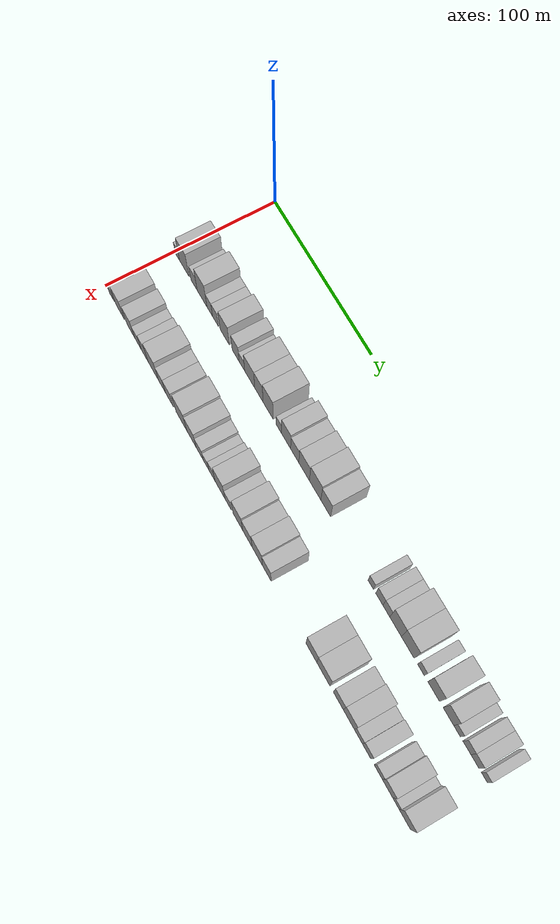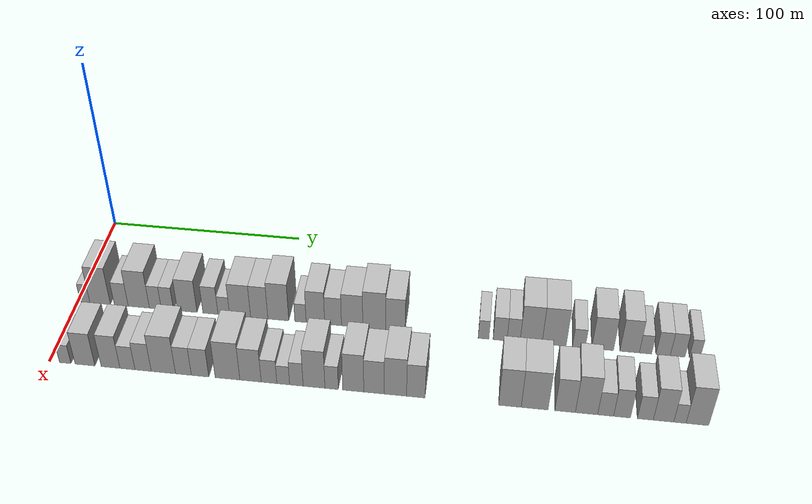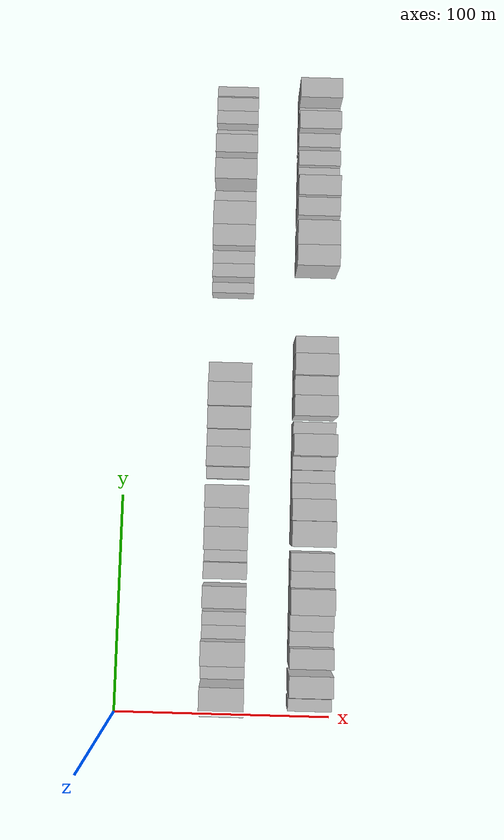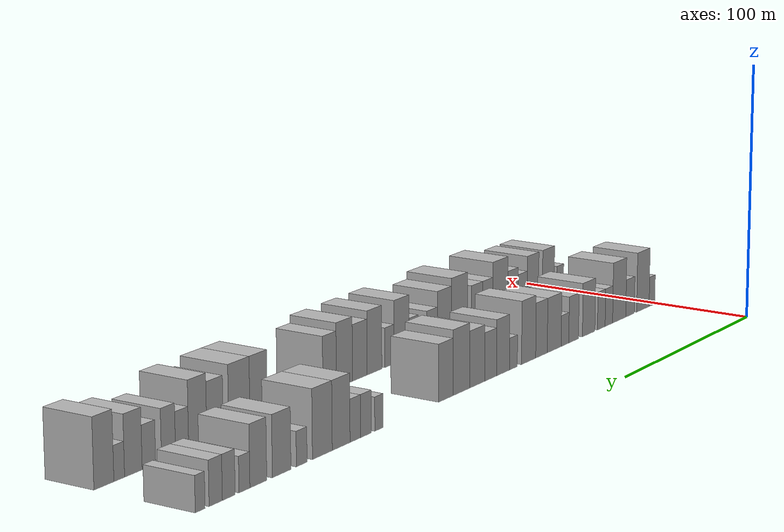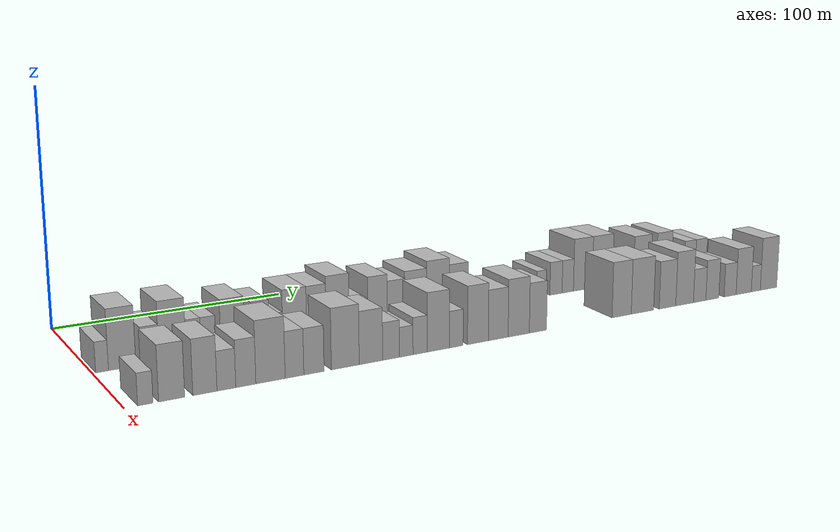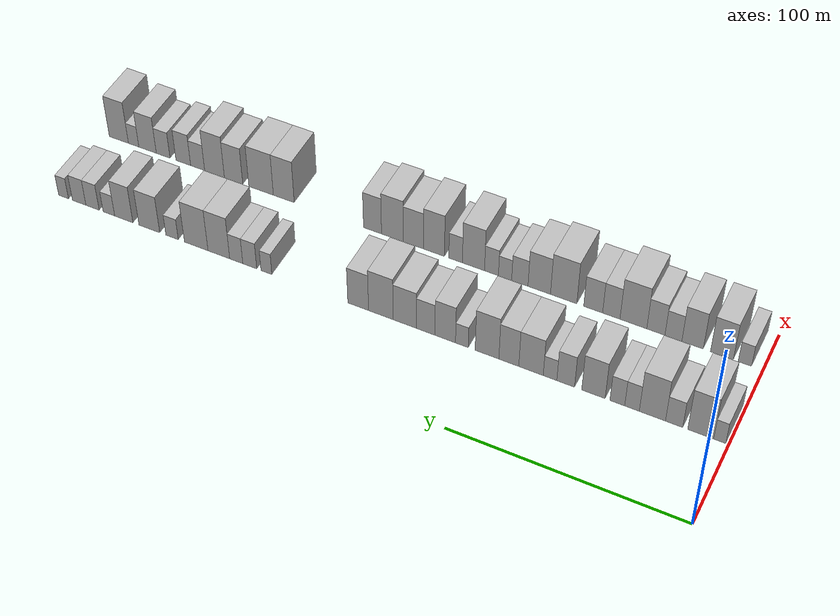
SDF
<sdf version="1.6">
 <world name="default">
  <model name="building_31">
   <static>1</static>
   <pose>50.0000 3.7047 0 0.000000 0.000000 0.000000</pose>
   <link name="link">
    <pose>0 0 6.00 0 0 0</pose>
    <collision name="collision"><geometry><box><size>20.0000 4.8413 12.0000</size></box></geometry></collision>
    <visual name="visual">
     <cast_shadows>0</cast_shadows>
     <geometry><box><size>20.0000 4.8413 12.0000</size></box></geometry>
     <material>
      <script>
       <uri>model://HANNAS_wall/materials/scripts</uri>
       <uri>model://HANNAS_wall/materials/textures</uri>
       <name>vrc/HANNAS_wall</name>
      </script>
     </material>
    </visual>
   </link>
  </model>
  <model name="building_32">
   <static>1</static>
   <pose>50.0000 11.3556 0 0.000000 0.000000 0.000000</pose>
   <link name="link">
    <pose>0 0 12.00 0 0 0</pose>
    <collision name="collision"><geometry><box><size>20.0000 10.4605 24.0000</size></box></geometry></collision>
    <visual name="visual">
     <cast_shadows>0</cast_shadows>
     <geometry><box><size>20.0000 10.4605 24.0000</size></box></geometry>
     <material>
      <script>
       <uri>model://HANNAS_wall/materials/scripts</uri>
       <uri>model://HANNAS_wall/materials/textures</uri>
       <name>vrc/HANNAS_wall</name>
      </script>
     </material>
    </visual>
   </link>
  </model>
  <model name="building_33">
   <static>1</static>
   <pose>50.0000 22.0970 0 0.000000 0.000000 0.000000</pose>
   <link name="link">
    <pose>0 0 7.50 0 0 0</pose>
    <collision name="collision"><geometry><box><size>20.0000 7.0223 15.0000</size></box></geometry></collision>
    <visual name="visual">
     <cast_shadows>0</cast_shadows>
     <geometry><box><size>20.0000 7.0223 15.0000</size></box></geometry>
     <material>
      <script>
       <uri>model://HANNAS_wall/materials/scripts</uri>
       <uri>model://HANNAS_wall/materials/textures</uri>
       <name>vrc/HANNAS_wall</name>
      </script>
     </material>
    </visual>
   </link>
  </model>
  <model name="building_34">
   <static>1</static>
   <pose>50.0000 30.9738 0 0.000000 0.000000 0.000000</pose>
   <link name="link">
    <pose>0 0 12.00 0 0 0</pose>
    <collision name="collision"><geometry><box><size>20.0000 10.7313 24.0000</size></box></geometry></collision>
    <visual name="visual">
     <cast_shadows>0</cast_shadows>
     <geometry><box><size>20.0000 10.7313 24.0000</size></box></geometry>
     <material>
      <script>
       <uri>model://HANNAS_wall/materials/scripts</uri>
       <uri>model://HANNAS_wall/materials/textures</uri>
       <name>vrc/HANNAS_wall</name>
      </script>
     </material>
    </visual>
   </link>
  </model>
  <model name="building_35">
   <static>1</static>
   <pose>50.0000 39.3434 0 0.000000 0.000000 0.000000</pose>
   <link name="link">
    <pose>0 0 7.50 0 0 0</pose>
    <collision name="collision"><geometry><box><size>20.0000 6.0079 15.0000</size></box></geometry></collision>
    <visual name="visual">
     <cast_shadows>0</cast_shadows>
     <geometry><box><size>20.0000 6.0079 15.0000</size></box></geometry>
     <material>
      <script>
       <uri>model://HANNAS_wall/materials/scripts</uri>
       <uri>model://HANNAS_wall/materials/textures</uri>
       <name>vrc/HANNAS_wall</name>
      </script>
     </material>
    </visual>
   </link>
  </model>
  <model name="building_36">
   <static>1</static>
   <pose>50.0000 45.4067 0 0.000000 0.000000 0.000000</pose>
   <link name="link">
    <pose>0 0 7.50 0 0 0</pose>
    <collision name="collision"><geometry><box><size>20.0000 6.1187 15.0000</size></box></geometry></collision>
    <visual name="visual">
     <cast_shadows>0</cast_shadows>
     <geometry><box><size>20.0000 6.1187 15.0000</size></box></geometry>
     <material>
      <script>
       <uri>model://HANNAS_wall/materials/scripts</uri>
       <uri>model://HANNAS_wall/materials/textures</uri>
       <name>vrc/HANNAS_wall</name>
      </script>
     </material>
    </visual>
   </link>
  </model>
  <model name="building_37">
   <static>1</static>
   <pose>50.0000 55.3528 0 0.000000 0.000000 0.000000</pose>
   <link name="link">
    <pose>0 0 10.50 0 0 0</pose>
    <collision name="collision"><geometry><box><size>20.0000 9.7734 21.0000</size></box></geometry></collision>
    <visual name="visual">
     <cast_shadows>0</cast_shadows>
     <geometry><box><size>20.0000 9.7734 21.0000</size></box></geometry>
     <material>
      <script>
       <uri>model://HANNAS_wall/materials/scripts</uri>
       <uri>model://HANNAS_wall/materials/textures</uri>
       <name>vrc/HANNAS_wall</name>
      </script>
     </material>
    </visual>
   </link>
  </model>
  <model name="building_38">
   <static>1</static>
   <pose>50.0000 66.9784 0 0.000000 0.000000 0.000000</pose>
   <link name="link">
    <pose>0 0 9.00 0 0 0</pose>
    <collision name="collision"><geometry><box><size>20.0000 7.4777 18.0000</size></box></geometry></collision>
    <visual name="visual">
     <cast_shadows>0</cast_shadows>
     <geometry><box><size>20.0000 7.4777 18.0000</size></box></geometry>
     <material>
      <script>
       <uri>model://HANNAS_wall/materials/scripts</uri>
       <uri>model://HANNAS_wall/materials/textures</uri>
       <name>vrc/HANNAS_wall</name>
      </script>
     </material>
    </visual>
   </link>
  </model>
  <model name="building_39">
   <static>1</static>
   <pose>50.0000 73.5964 0 0.000000 0.000000 0.000000</pose>
   <link name="link">
    <pose>0 0 6.00 0 0 0</pose>
    <collision name="collision"><geometry><box><size>20.0000 5.7583 12.0000</size></box></geometry></collision>
    <visual name="visual">
     <cast_shadows>0</cast_shadows>
     <geometry><box><size>20.0000 5.7583 12.0000</size></box></geometry>
     <material>
      <script>
       <uri>model://HANNAS_wall/materials/scripts</uri>
       <uri>model://HANNAS_wall/materials/textures</uri>
       <name>vrc/HANNAS_wall</name>
      </script>
     </material>
    </visual>
   </link>
  </model>
  <model name="building_40">
   <static>1</static>
   <pose>50.0000 81.6918 0 0.000000 0.000000 0.000000</pose>
   <link name="link">
    <pose>0 0 10.50 0 0 0</pose>
    <collision name="collision"><geometry><box><size>20.0000 10.4326 21.0000</size></box></geometry></collision>
    <visual name="visual">
     <cast_shadows>0</cast_shadows>
     <geometry><box><size>20.0000 10.4326 21.0000</size></box></geometry>
     <material>
      <script>
       <uri>model://HANNAS_wall/materials/scripts</uri>
       <uri>model://HANNAS_wall/materials/textures</uri>
       <name>vrc/HANNAS_wall</name>
      </script>
     </material>
    </visual>
   </link>
  </model>
  <model name="building_41">
   <static>1</static>
   <pose>50.0000 91.1878 0 0.000000 0.000000 0.000000</pose>
   <link name="link">
    <pose>0 0 10.50 0 0 0</pose>
    <collision name="collision"><geometry><box><size>20.0000 8.5594 21.0000</size></box></geometry></collision>
    <visual name="visual">
     <cast_shadows>0</cast_shadows>
     <geometry><box><size>20.0000 8.5594 21.0000</size></box></geometry>
     <material>
      <script>
       <uri>model://HANNAS_wall/materials/scripts</uri>
       <uri>model://HANNAS_wall/materials/textures</uri>
       <name>vrc/HANNAS_wall</name>
      </script>
     </material>
    </visual>
   </link>
  </model>
  <model name="building_42">
   <static>1</static>
   <pose>50.0000 100.6105 0 0.000000 0.000000 0.000000</pose>
   <link name="link">
    <pose>0 0 12.00 0 0 0</pose>
    <collision name="collision"><geometry><box><size>20.0000 10.2859 24.0000</size></box></geometry></collision>
    <visual name="visual">
     <cast_shadows>0</cast_shadows>
     <geometry><box><size>20.0000 10.2859 24.0000</size></box></geometry>
     <material>
      <script>
       <uri>model://HANNAS_wall/materials/scripts</uri>
       <uri>model://HANNAS_wall/materials/textures</uri>
       <name>vrc/HANNAS_wall</name>
      </script>
     </material>
    </visual>
   </link>
  </model>
  <model name="building_43">
   <static>1</static>
   <pose>50.0000 111.5396 0 0.000000 0.000000 0.000000</pose>
   <link name="link">
    <pose>0 0 6.00 0 0 0</pose>
    <collision name="collision"><geometry><box><size>20.0000 5.5724 12.0000</size></box></geometry></collision>
    <visual name="visual">
     <cast_shadows>0</cast_shadows>
     <geometry><box><size>20.0000 5.5724 12.0000</size></box></geometry>
     <material>
      <script>
       <uri>model://HANNAS_wall/materials/scripts</uri>
       <uri>model://HANNAS_wall/materials/textures</uri>
       <name>vrc/HANNAS_wall</name>
      </script>
     </material>
    </visual>
   </link>
  </model>
  <model name="building_44">
   <static>1</static>
   <pose>50.0000 118.8459 0 0.000000 0.000000 0.000000</pose>
   <link name="link">
    <pose>0 0 10.50 0 0 0</pose>
    <collision name="collision"><geometry><box><size>20.0000 9.0402 21.0000</size></box></geometry></collision>
    <visual name="visual">
     <cast_shadows>0</cast_shadows>
     <geometry><box><size>20.0000 9.0402 21.0000</size></box></geometry>
     <material>
      <script>
       <uri>model://HANNAS_wall/materials/scripts</uri>
       <uri>model://HANNAS_wall/materials/textures</uri>
       <name>vrc/HANNAS_wall</name>
      </script>
     </material>
    </visual>
   </link>
  </model>
  <model name="building_45">
   <static>1</static>
   <pose>50.0000 127.4547 0 0.000000 0.000000 0.000000</pose>
   <link name="link">
    <pose>0 0 9.00 0 0 0</pose>
    <collision name="collision"><geometry><box><size>20.0000 8.1775 18.0000</size></box></geometry></collision>
    <visual name="visual">
     <cast_shadows>0</cast_shadows>
     <geometry><box><size>20.0000 8.1775 18.0000</size></box></geometry>
     <material>
      <script>
       <uri>model://HANNAS_wall/materials/scripts</uri>
       <uri>model://HANNAS_wall/materials/textures</uri>
       <name>vrc/HANNAS_wall</name>
      </script>
     </material>
    </visual>
   </link>
  </model>
  <model name="building_46">
   <static>1</static>
   <pose>50.0000 136.7219 0 0.000000 0.000000 0.000000</pose>
   <link name="link">
    <pose>0 0 10.50 0 0 0</pose>
    <collision name="collision"><geometry><box><size>20.0000 10.3569 21.0000</size></box></geometry></collision>
    <visual name="visual">
     <cast_shadows>0</cast_shadows>
     <geometry><box><size>20.0000 10.3569 21.0000</size></box></geometry>
     <material>
      <script>
       <uri>model://HANNAS_wall/materials/scripts</uri>
       <uri>model://HANNAS_wall/materials/textures</uri>
       <name>vrc/HANNAS_wall</name>
      </script>
     </material>
    </visual>
   </link>
  </model>
  <model name="building_47">
   <static>1</static>
   <pose>50.0000 147.4399 0 0.000000 0.000000 0.000000</pose>
   <link name="link">
    <pose>0 0 12.00 0 0 0</pose>
    <collision name="collision"><geometry><box><size>20.0000 11.0789 24.0000</size></box></geometry></collision>
    <visual name="visual">
     <cast_shadows>0</cast_shadows>
     <geometry><box><size>20.0000 11.0789 24.0000</size></box></geometry>
     <material>
      <script>
       <uri>model://HANNAS_wall/materials/scripts</uri>
       <uri>model://HANNAS_wall/materials/textures</uri>
       <name>vrc/HANNAS_wall</name>
      </script>
     </material>
    </visual>
   </link>
  </model>
  <model name="building_48">
   <static>1</static>
   <pose>50.0000 157.6778 0 0.000000 0.000000 0.000000</pose>
   <link name="link">
    <pose>0 0 10.50 0 0 0</pose>
    <collision name="collision"><geometry><box><size>20.0000 9.3970 21.0000</size></box></geometry></collision>
    <visual name="visual">
     <cast_shadows>0</cast_shadows>
     <geometry><box><size>20.0000 9.3970 21.0000</size></box></geometry>
     <material>
      <script>
       <uri>model://HANNAS_wall/materials/scripts</uri>
       <uri>model://HANNAS_wall/materials/textures</uri>
       <name>vrc/HANNAS_wall</name>
      </script>
     </material>
    </visual>
   </link>
  </model>
  <model name="building_49">
   <static>1</static>
   <pose>50.0000 199.9840 0 0.000000 0.000000 0.000000</pose>
   <link name="link">
    <pose>0 0 6.00 0 0 0</pose>
    <collision name="collision"><geometry><box><size>20.0000 5.0718 12.0000</size></box></geometry></collision>
    <visual name="visual">
     <cast_shadows>0</cast_shadows>
     <geometry><box><size>20.0000 5.0718 12.0000</size></box></geometry>
     <material>
      <script>
       <uri>model://HANNAS_wall/materials/scripts</uri>
       <uri>model://HANNAS_wall/materials/textures</uri>
       <name>vrc/HANNAS_wall</name>
      </script>
     </material>
    </visual>
   </link>
  </model>
  <model name="building_50">
   <static>1</static>
   <pose>50.0000 207.8070 0 0.000000 0.000000 0.000000</pose>
   <link name="link">
    <pose>0 0 7.50 0 0 0</pose>
    <collision name="collision"><geometry><box><size>20.0000 6.5744 15.0000</size></box></geometry></collision>
    <visual name="visual">
     <cast_shadows>0</cast_shadows>
     <geometry><box><size>20.0000 6.5744 15.0000</size></box></geometry>
     <material>
      <script>
       <uri>model://HANNAS_wall/materials/scripts</uri>
       <uri>model://HANNAS_wall/materials/textures</uri>
       <name>vrc/HANNAS_wall</name>
      </script>
     </material>
    </visual>
   </link>
  </model>
  <model name="building_51">
   <static>1</static>
   <pose>50.0000 214.1928 0 0.000000 0.000000 0.000000</pose>
   <link name="link">
    <pose>0 0 7.50 0 0 0</pose>
    <collision name="collision"><geometry><box><size>20.0000 6.1971 15.0000</size></box></geometry></collision>
    <visual name="visual">
     <cast_shadows>0</cast_shadows>
     <geometry><box><size>20.0000 6.1971 15.0000</size></box></geometry>
     <material>
      <script>
       <uri>model://HANNAS_wall/materials/scripts</uri>
       <uri>model://HANNAS_wall/materials/textures</uri>
       <name>vrc/HANNAS_wall</name>
      </script>
     </material>
    </visual>
   </link>
  </model>
  <model name="building_52">
   <static>1</static>
   <pose>50.0000 222.4726 0 0.000000 0.000000 0.000000</pose>
   <link name="link">
    <pose>0 0 12.00 0 0 0</pose>
    <collision name="collision"><geometry><box><size>20.0000 10.3624 24.0000</size></box></geometry></collision>
    <visual name="visual">
     <cast_shadows>0</cast_shadows>
     <geometry><box><size>20.0000 10.3624 24.0000</size></box></geometry>
     <material>
      <script>
       <uri>model://HANNAS_wall/materials/scripts</uri>
       <uri>model://HANNAS_wall/materials/textures</uri>
       <name>vrc/HANNAS_wall</name>
      </script>
     </material>
    </visual>
   </link>
  </model>
  <model name="building_53">
   <static>1</static>
   <pose>50.0000 233.3145 0 0.000000 0.000000 0.000000</pose>
   <link name="link">
    <pose>0 0 12.00 0 0 0</pose>
    <collision name="collision"><geometry><box><size>20.0000 11.3215 24.0000</size></box></geometry></collision>
    <visual name="visual">
     <cast_shadows>0</cast_shadows>
     <geometry><box><size>20.0000 11.3215 24.0000</size></box></geometry>
     <material>
      <script>
       <uri>model://HANNAS_wall/materials/scripts</uri>
       <uri>model://HANNAS_wall/materials/textures</uri>
       <name>vrc/HANNAS_wall</name>
      </script>
     </material>
    </visual>
   </link>
  </model>
  <model name="building_54">
   <static>1</static>
   <pose>50.0000 244.9647 0 0.000000 0.000000 0.000000</pose>
   <link name="link">
    <pose>0 0 6.00 0 0 0</pose>
    <collision name="collision"><geometry><box><size>20.0000 5.9788 12.0000</size></box></geometry></collision>
    <visual name="visual">
     <cast_shadows>0</cast_shadows>
     <geometry><box><size>20.0000 5.9788 12.0000</size></box></geometry>
     <material>
      <script>
       <uri>model://HANNAS_wall/materials/scripts</uri>
       <uri>model://HANNAS_wall/materials/textures</uri>
       <name>vrc/HANNAS_wall</name>
      </script>
     </material>
    </visual>
   </link>
  </model>
  <model name="building_55">
   <static>1</static>
   <pose>50.0000 256.0269 0 0.000000 0.000000 0.000000</pose>
   <link name="link">
    <pose>0 0 10.50 0 0 0</pose>
    <collision name="collision"><geometry><box><size>20.0000 10.1456 21.0000</size></box></geometry></collision>
    <visual name="visual">
     <cast_shadows>0</cast_shadows>
     <geometry><box><size>20.0000 10.1456 21.0000</size></box></geometry>
     <material>
      <script>
       <uri>model://HANNAS_wall/materials/scripts</uri>
       <uri>model://HANNAS_wall/materials/textures</uri>
       <name>vrc/HANNAS_wall</name>
      </script>
     </material>
    </visual>
   </link>
  </model>
  <model name="building_56">
   <static>1</static>
   <pose>50.0000 268.5991 0 0.000000 0.000000 0.000000</pose>
   <link name="link">
    <pose>0 0 10.50 0 0 0</pose>
    <collision name="collision"><geometry><box><size>20.0000 8.9989 21.0000</size></box></geometry></collision>
    <visual name="visual">
     <cast_shadows>0</cast_shadows>
     <geometry><box><size>20.0000 8.9989 21.0000</size></box></geometry>
     <material>
      <script>
       <uri>model://HANNAS_wall/materials/scripts</uri>
       <uri>model://HANNAS_wall/materials/textures</uri>
       <name>vrc/HANNAS_wall</name>
      </script>
     </material>
    </visual>
   </link>
  </model>
  <model name="building_57">
   <static>1</static>
   <pose>50.0000 275.9537 0 0.000000 0.000000 0.000000</pose>
   <link name="link">
    <pose>0 0 6.00 0 0 0</pose>
    <collision name="collision"><geometry><box><size>20.0000 5.7102 12.0000</size></box></geometry></collision>
    <visual name="visual">
     <cast_shadows>0</cast_shadows>
     <geometry><box><size>20.0000 5.7102 12.0000</size></box></geometry>
     <material>
      <script>
       <uri>model://HANNAS_wall/materials/scripts</uri>
       <uri>model://HANNAS_wall/materials/textures</uri>
       <name>vrc/HANNAS_wall</name>
      </script>
     </material>
    </visual>
   </link>
  </model>
  <model name="building_58">
   <static>1</static>
   <pose>50.0000 284.1111 0 0.000000 0.000000 0.000000</pose>
   <link name="link">
    <pose>0 0 7.50 0 0 0</pose>
    <collision name="collision"><geometry><box><size>20.0000 6.6046 15.0000</size></box></geometry></collision>
    <visual name="visual">
     <cast_shadows>0</cast_shadows>
     <geometry><box><size>20.0000 6.6046 15.0000</size></box></geometry>
     <material>
      <script>
       <uri>model://HANNAS_wall/materials/scripts</uri>
       <uri>model://HANNAS_wall/materials/textures</uri>
       <name>vrc/HANNAS_wall</name>
      </script>
     </material>
    </visual>
   </link>
  </model>
  <model name="building_59">
   <static>1</static>
   <pose>50.0000 290.7950 0 0.000000 0.000000 0.000000</pose>
   <link name="link">
    <pose>0 0 7.50 0 0 0</pose>
    <collision name="collision"><geometry><box><size>20.0000 6.7632 15.0000</size></box></geometry></collision>
    <visual name="visual">
     <cast_shadows>0</cast_shadows>
     <geometry><box><size>20.0000 6.7632 15.0000</size></box></geometry>
     <material>
      <script>
       <uri>model://HANNAS_wall/materials/scripts</uri>
       <uri>model://HANNAS_wall/materials/textures</uri>
       <name>vrc/HANNAS_wall</name>
      </script>
     </material>
    </visual>
   </link>
  </model>
  <model name="building_60">
   <static>1</static>
   <pose>50.0000 298.6488 0 0.000000 0.000000 0.000000</pose>
   <link name="link">
    <pose>0 0 6.00 0 0 0</pose>
    <collision name="collision"><geometry><box><size>20.0000 4.9443 12.0000</size></box></geometry></collision>
    <visual name="visual">
     <cast_shadows>0</cast_shadows>
     <geometry><box><size>20.0000 4.9443 12.0000</size></box></geometry>
     <material>
      <script>
       <uri>model://HANNAS_wall/materials/scripts</uri>
       <uri>model://HANNAS_wall/materials/textures</uri>
       <name>vrc/HANNAS_wall</name>
      </script>
     </material>
    </visual>
   </link>
  </model>
  <model name="building_90">
   <static>1</static>
   <pose>90.0000 7.5762 0 0.000000 0.000000 0.000000</pose>
   <link name="link">
    <pose>0 0 6.00 0 0 0</pose>
    <collision name="collision"><geometry><box><size>20.0000 5.5436 12.0000</size></box></geometry></collision>
    <visual name="visual">
     <cast_shadows>0</cast_shadows>
     <geometry><box><size>20.0000 5.5436 12.0000</size></box></geometry>
     <material>
      <script>
       <uri>model://HANNAS_wall/materials/scripts</uri>
       <uri>model://HANNAS_wall/materials/textures</uri>
       <name>vrc/HANNAS_wall</name>
      </script>
     </material>
    </visual>
   </link>
  </model>
  <model name="building_91">
   <static>1</static>
   <pose>90.0000 17.1047 0 0.000000 0.000000 0.000000</pose>
   <link name="link">
    <pose>0 0 10.50 0 0 0</pose>
    <collision name="collision"><geometry><box><size>20.0000 9.5132 21.0000</size></box></geometry></collision>
    <visual name="visual">
     <cast_shadows>0</cast_shadows>
     <geometry><box><size>20.0000 9.5132 21.0000</size></box></geometry>
     <material>
      <script>
       <uri>model://HANNAS_wall/materials/scripts</uri>
       <uri>model://HANNAS_wall/materials/textures</uri>
       <name>vrc/HANNAS_wall</name>
      </script>
     </material>
    </visual>
   </link>
  </model>
  <model name="building_92">
   <static>1</static>
   <pose>90.0000 29.3681 0 0.000000 0.000000 0.000000</pose>
   <link name="link">
    <pose>0 0 10.50 0 0 0</pose>
    <collision name="collision"><geometry><box><size>20.0000 9.0137 21.0000</size></box></geometry></collision>
    <visual name="visual">
     <cast_shadows>0</cast_shadows>
     <geometry><box><size>20.0000 9.0137 21.0000</size></box></geometry>
     <material>
      <script>
       <uri>model://HANNAS_wall/materials/scripts</uri>
       <uri>model://HANNAS_wall/materials/textures</uri>
       <name>vrc/HANNAS_wall</name>
      </script>
     </material>
    </visual>
   </link>
  </model>
  <model name="building_93">
   <static>1</static>
   <pose>90.0000 37.4484 0 0.000000 0.000000 0.000000</pose>
   <link name="link">
    <pose>0 0 7.50 0 0 0</pose>
    <collision name="collision"><geometry><box><size>20.0000 7.1468 15.0000</size></box></geometry></collision>
    <visual name="visual">
     <cast_shadows>0</cast_shadows>
     <geometry><box><size>20.0000 7.1468 15.0000</size></box></geometry>
     <material>
      <script>
       <uri>model://HANNAS_wall/materials/scripts</uri>
       <uri>model://HANNAS_wall/materials/textures</uri>
       <name>vrc/HANNAS_wall</name>
      </script>
     </material>
    </visual>
   </link>
  </model>
  <model name="building_94">
   <static>1</static>
   <pose>90.0000 44.8865 0 0.000000 0.000000 0.000000</pose>
   <link name="link">
    <pose>0 0 9.00 0 0 0</pose>
    <collision name="collision"><geometry><box><size>20.0000 7.7296 18.0000</size></box></geometry></collision>
    <visual name="visual">
     <cast_shadows>0</cast_shadows>
     <geometry><box><size>20.0000 7.7296 18.0000</size></box></geometry>
     <material>
      <script>
       <uri>model://HANNAS_wall/materials/scripts</uri>
       <uri>model://HANNAS_wall/materials/textures</uri>
       <name>vrc/HANNAS_wall</name>
      </script>
     </material>
    </visual>
   </link>
  </model>
  <model name="building_95">
   <static>1</static>
   <pose>90.0000 54.5044 0 0.000000 0.000000 0.000000</pose>
   <link name="link">
    <pose>0 0 12.00 0 0 0</pose>
    <collision name="collision"><geometry><box><size>20.0000 11.5062 24.0000</size></box></geometry></collision>
    <visual name="visual">
     <cast_shadows>0</cast_shadows>
     <geometry><box><size>20.0000 11.5062 24.0000</size></box></geometry>
     <material>
      <script>
       <uri>model://HANNAS_wall/materials/scripts</uri>
       <uri>model://HANNAS_wall/materials/textures</uri>
       <name>vrc/HANNAS_wall</name>
      </script>
     </material>
    </visual>
   </link>
  </model>
  <model name="building_96">
   <static>1</static>
   <pose>90.0000 63.9967 0 0.000000 0.000000 0.000000</pose>
   <link name="link">
    <pose>0 0 9.00 0 0 0</pose>
    <collision name="collision"><geometry><box><size>20.0000 7.4783 18.0000</size></box></geometry></collision>
    <visual name="visual">
     <cast_shadows>0</cast_shadows>
     <geometry><box><size>20.0000 7.4783 18.0000</size></box></geometry>
     <material>
      <script>
       <uri>model://HANNAS_wall/materials/scripts</uri>
       <uri>model://HANNAS_wall/materials/textures</uri>
       <name>vrc/HANNAS_wall</name>
      </script>
     </material>
    </visual>
   </link>
  </model>
  <model name="building_97">
   <static>1</static>
   <pose>90.0000 71.8436 0 0.000000 0.000000 0.000000</pose>
   <link name="link">
    <pose>0 0 9.00 0 0 0</pose>
    <collision name="collision"><geometry><box><size>20.0000 8.2156 18.0000</size></box></geometry></collision>
    <visual name="visual">
     <cast_shadows>0</cast_shadows>
     <geometry><box><size>20.0000 8.2156 18.0000</size></box></geometry>
     <material>
      <script>
       <uri>model://HANNAS_wall/materials/scripts</uri>
       <uri>model://HANNAS_wall/materials/textures</uri>
       <name>vrc/HANNAS_wall</name>
      </script>
     </material>
    </visual>
   </link>
  </model>
  <model name="building_98">
   <static>1</static>
   <pose>90.0000 84.7358 0 0.000000 0.000000 0.000000</pose>
   <link name="link">
    <pose>0 0 12.00 0 0 0</pose>
    <collision name="collision"><geometry><box><size>20.0000 11.5688 24.0000</size></box></geometry></collision>
    <visual name="visual">
     <cast_shadows>0</cast_shadows>
     <geometry><box><size>20.0000 11.5688 24.0000</size></box></geometry>
     <material>
      <script>
       <uri>model://HANNAS_wall/materials/scripts</uri>
       <uri>model://HANNAS_wall/materials/textures</uri>
       <name>vrc/HANNAS_wall</name>
      </script>
     </material>
    </visual>
   </link>
  </model>
  <model name="building_99">
   <static>1</static>
   <pose>90.0000 95.5029 0 0.000000 0.000000 0.000000</pose>
   <link name="link">
    <pose>0 0 10.50 0 0 0</pose>
    <collision name="collision"><geometry><box><size>20.0000 9.9653 21.0000</size></box></geometry></collision>
    <visual name="visual">
     <cast_shadows>0</cast_shadows>
     <geometry><box><size>20.0000 9.9653 21.0000</size></box></geometry>
     <material>
      <script>
       <uri>model://HANNAS_wall/materials/scripts</uri>
       <uri>model://HANNAS_wall/materials/textures</uri>
       <name>vrc/HANNAS_wall</name>
      </script>
     </material>
    </visual>
   </link>
  </model>
  <model name="building_100">
   <static>1</static>
   <pose>90.0000 104.1213 0 0.000000 0.000000 0.000000</pose>
   <link name="link">
    <pose>0 0 7.50 0 0 0</pose>
    <collision name="collision"><geometry><box><size>20.0000 7.2715 15.0000</size></box></geometry></collision>
    <visual name="visual">
     <cast_shadows>0</cast_shadows>
     <geometry><box><size>20.0000 7.2715 15.0000</size></box></geometry>
     <material>
      <script>
       <uri>model://HANNAS_wall/materials/scripts</uri>
       <uri>model://HANNAS_wall/materials/textures</uri>
       <name>vrc/HANNAS_wall</name>
      </script>
     </material>
    </visual>
   </link>
  </model>
  <model name="building_101">
   <static>1</static>
   <pose>90.0000 110.7124 0 0.000000 0.000000 0.000000</pose>
   <link name="link">
    <pose>0 0 6.00 0 0 0</pose>
    <collision name="collision"><geometry><box><size>20.0000 5.9107 12.0000</size></box></geometry></collision>
    <visual name="visual">
     <cast_shadows>0</cast_shadows>
     <geometry><box><size>20.0000 5.9107 12.0000</size></box></geometry>
     <material>
      <script>
       <uri>model://HANNAS_wall/materials/scripts</uri>
       <uri>model://HANNAS_wall/materials/textures</uri>
       <name>vrc/HANNAS_wall</name>
      </script>
     </material>
    </visual>
   </link>
  </model>
  <model name="building_102">
   <static>1</static>
   <pose>90.0000 116.8022 0 0.000000 0.000000 0.000000</pose>
   <link name="link">
    <pose>0 0 7.50 0 0 0</pose>
    <collision name="collision"><geometry><box><size>20.0000 6.2690 15.0000</size></box></geometry></collision>
    <visual name="visual">
     <cast_shadows>0</cast_shadows>
     <geometry><box><size>20.0000 6.2690 15.0000</size></box></geometry>
     <material>
      <script>
       <uri>model://HANNAS_wall/materials/scripts</uri>
       <uri>model://HANNAS_wall/materials/textures</uri>
       <name>vrc/HANNAS_wall</name>
      </script>
     </material>
    </visual>
   </link>
  </model>
  <model name="building_103">
   <static>1</static>
   <pose>90.0000 124.9597 0 0.000000 0.000000 0.000000</pose>
   <link name="link">
    <pose>0 0 12.00 0 0 0</pose>
    <collision name="collision"><geometry><box><size>20.0000 10.0459 24.0000</size></box></geometry></collision>
    <visual name="visual">
     <cast_shadows>0</cast_shadows>
     <geometry><box><size>20.0000 10.0459 24.0000</size></box></geometry>
     <material>
      <script>
       <uri>model://HANNAS_wall/materials/scripts</uri>
       <uri>model://HANNAS_wall/materials/textures</uri>
       <name>vrc/HANNAS_wall</name>
      </script>
     </material>
    </visual>
   </link>
  </model>
  <model name="building_104">
   <static>1</static>
   <pose>90.0000 133.0621 0 0.000000 0.000000 0.000000</pose>
   <link name="link">
    <pose>0 0 7.50 0 0 0</pose>
    <collision name="collision"><geometry><box><size>20.0000 6.1590 15.0000</size></box></geometry></collision>
    <visual name="visual">
     <cast_shadows>0</cast_shadows>
     <geometry><box><size>20.0000 6.1590 15.0000</size></box></geometry>
     <material>
      <script>
       <uri>model://HANNAS_wall/materials/scripts</uri>
       <uri>model://HANNAS_wall/materials/textures</uri>
       <name>vrc/HANNAS_wall</name>
      </script>
     </material>
    </visual>
   </link>
  </model>
  <model name="building_105">
   <static>1</static>
   <pose>90.0000 142.9595 0 0.000000 0.000000 0.000000</pose>
   <link name="link">
    <pose>0 0 12.00 0 0 0</pose>
    <collision name="collision"><geometry><box><size>20.0000 9.6357 24.0000</size></box></geometry></collision>
    <visual name="visual">
     <cast_shadows>0</cast_shadows>
     <geometry><box><size>20.0000 9.6357 24.0000</size></box></geometry>
     <material>
      <script>
       <uri>model://HANNAS_wall/materials/scripts</uri>
       <uri>model://HANNAS_wall/materials/textures</uri>
       <name>vrc/HANNAS_wall</name>
      </script>
     </material>
    </visual>
   </link>
  </model>
  <model name="building_106">
   <static>1</static>
   <pose>90.0000 152.4406 0 0.000000 0.000000 0.000000</pose>
   <link name="link">
    <pose>0 0 10.50 0 0 0</pose>
    <collision name="collision"><geometry><box><size>20.0000 9.3266 21.0000</size></box></geometry></collision>
    <visual name="visual">
     <cast_shadows>0</cast_shadows>
     <geometry><box><size>20.0000 9.3266 21.0000</size></box></geometry>
     <material>
      <script>
       <uri>model://HANNAS_wall/materials/scripts</uri>
       <uri>model://HANNAS_wall/materials/textures</uri>
       <name>vrc/HANNAS_wall</name>
      </script>
     </material>
    </visual>
   </link>
  </model>
  <model name="building_107">
   <static>1</static>
   <pose>90.0000 162.1863 0 0.000000 0.000000 0.000000</pose>
   <link name="link">
    <pose>0 0 12.00 0 0 0</pose>
    <collision name="collision"><geometry><box><size>20.0000 10.1648 24.0000</size></box></geometry></collision>
    <visual name="visual">
     <cast_shadows>0</cast_shadows>
     <geometry><box><size>20.0000 10.1648 24.0000</size></box></geometry>
     <material>
      <script>
       <uri>model://HANNAS_wall/materials/scripts</uri>
       <uri>model://HANNAS_wall/materials/textures</uri>
       <name>vrc/HANNAS_wall</name>
      </script>
     </material>
    </visual>
   </link>
  </model>
  <model name="building_108">
   <static>1</static>
   <pose>90.0000 171.4746 0 0.000000 0.000000 0.000000</pose>
   <link name="link">
    <pose>0 0 10.50 0 0 0</pose>
    <collision name="collision"><geometry><box><size>20.0000 8.4119 21.0000</size></box></geometry></collision>
    <visual name="visual">
     <cast_shadows>0</cast_shadows>
     <geometry><box><size>20.0000 8.4119 21.0000</size></box></geometry>
     <material>
      <script>
       <uri>model://HANNAS_wall/materials/scripts</uri>
       <uri>model://HANNAS_wall/materials/textures</uri>
       <name>vrc/HANNAS_wall</name>
      </script>
     </material>
    </visual>
   </link>
  </model>
  <model name="building_109">
   <static>1</static>
   <pose>90.0000 213.8082 0 0.000000 0.000000 0.000000</pose>
   <link name="link">
    <pose>0 0 12.00 0 0 0</pose>
    <collision name="collision"><geometry><box><size>20.0000 10.0851 24.0000</size></box></geometry></collision>
    <visual name="visual">
     <cast_shadows>0</cast_shadows>
     <geometry><box><size>20.0000 10.0851 24.0000</size></box></geometry>
     <material>
      <script>
       <uri>model://HANNAS_wall/materials/scripts</uri>
       <uri>model://HANNAS_wall/materials/textures</uri>
       <name>vrc/HANNAS_wall</name>
      </script>
     </material>
    </visual>
   </link>
  </model>
  <model name="building_110">
   <static>1</static>
   <pose>90.0000 224.8289 0 0.000000 0.000000 0.000000</pose>
   <link name="link">
    <pose>0 0 12.00 0 0 0</pose>
    <collision name="collision"><geometry><box><size>20.0000 11.9564 24.0000</size></box></geometry></collision>
    <visual name="visual">
     <cast_shadows>0</cast_shadows>
     <geometry><box><size>20.0000 11.9564 24.0000</size></box></geometry>
     <material>
      <script>
       <uri>model://HANNAS_wall/materials/scripts</uri>
       <uri>model://HANNAS_wall/materials/textures</uri>
       <name>vrc/HANNAS_wall</name>
      </script>
     </material>
    </visual>
   </link>
  </model>
  <model name="building_111">
   <static>1</static>
   <pose>90.0000 238.3386 0 0.000000 0.000000 0.000000</pose>
   <link name="link">
    <pose>0 0 10.50 0 0 0</pose>
    <collision name="collision"><geometry><box><size>20.0000 9.0631 21.0000</size></box></geometry></collision>
    <visual name="visual">
     <cast_shadows>0</cast_shadows>
     <geometry><box><size>20.0000 9.0631 21.0000</size></box></geometry>
     <material>
      <script>
       <uri>model://HANNAS_wall/materials/scripts</uri>
       <uri>model://HANNAS_wall/materials/textures</uri>
       <name>vrc/HANNAS_wall</name>
      </script>
     </material>
    </visual>
   </link>
  </model>
  <model name="building_112">
   <static>1</static>
   <pose>90.0000 247.7775 0 0.000000 0.000000 0.000000</pose>
   <link name="link">
    <pose>0 0 12.00 0 0 0</pose>
    <collision name="collision"><geometry><box><size>20.0000 9.8147 24.0000</size></box></geometry></collision>
    <visual name="visual">
     <cast_shadows>0</cast_shadows>
     <geometry><box><size>20.0000 9.8147 24.0000</size></box></geometry>
     <material>
      <script>
       <uri>model://HANNAS_wall/materials/scripts</uri>
       <uri>model://HANNAS_wall/materials/textures</uri>
       <name>vrc/HANNAS_wall</name>
      </script>
     </material>
    </visual>
   </link>
  </model>
  <model name="building_113">
   <static>1</static>
   <pose>90.0000 256.1791 0 0.000000 0.000000 0.000000</pose>
   <link name="link">
    <pose>0 0 7.50 0 0 0</pose>
    <collision name="collision"><geometry><box><size>20.0000 6.9885 15.0000</size></box></geometry></collision>
    <visual name="visual">
     <cast_shadows>0</cast_shadows>
     <geometry><box><size>20.0000 6.9885 15.0000</size></box></geometry>
     <material>
      <script>
       <uri>model://HANNAS_wall/materials/scripts</uri>
       <uri>model://HANNAS_wall/materials/textures</uri>
       <name>vrc/HANNAS_wall</name>
      </script>
     </material>
    </visual>
   </link>
  </model>
  <model name="building_114">
   <static>1</static>
   <pose>90.0000 263.3703 0 0.000000 0.000000 0.000000</pose>
   <link name="link">
    <pose>0 0 9.00 0 0 0</pose>
    <collision name="collision"><geometry><box><size>20.0000 7.3940 18.0000</size></box></geometry></collision>
    <visual name="visual">
     <cast_shadows>0</cast_shadows>
     <geometry><box><size>20.0000 7.3940 18.0000</size></box></geometry>
     <material>
      <script>
       <uri>model://HANNAS_wall/materials/scripts</uri>
       <uri>model://HANNAS_wall/materials/textures</uri>
       <name>vrc/HANNAS_wall</name>
      </script>
     </material>
    </visual>
   </link>
  </model>
  <model name="building_115">
   <static>1</static>
   <pose>90.0000 273.5308 0 0.000000 0.000000 0.000000</pose>
   <link name="link">
    <pose>0 0 7.50 0 0 0</pose>
    <collision name="collision"><geometry><box><size>20.0000 6.9271 15.0000</size></box></geometry></collision>
    <visual name="visual">
     <cast_shadows>0</cast_shadows>
     <geometry><box><size>20.0000 6.9271 15.0000</size></box></geometry>
     <material>
      <script>
       <uri>model://HANNAS_wall/materials/scripts</uri>
       <uri>model://HANNAS_wall/materials/textures</uri>
       <name>vrc/HANNAS_wall</name>
      </script>
     </material>
    </visual>
   </link>
  </model>
  <model name="building_116">
   <static>1</static>
   <pose>90.0000 281.4503 0 0.000000 0.000000 0.000000</pose>
   <link name="link">
    <pose>0 0 10.50 0 0 0</pose>
    <collision name="collision"><geometry><box><size>20.0000 8.9118 21.0000</size></box></geometry></collision>
    <visual name="visual">
     <cast_shadows>0</cast_shadows>
     <geometry><box><size>20.0000 8.9118 21.0000</size></box></geometry>
     <material>
      <script>
       <uri>model://HANNAS_wall/materials/scripts</uri>
       <uri>model://HANNAS_wall/materials/textures</uri>
       <name>vrc/HANNAS_wall</name>
      </script>
     </material>
    </visual>
   </link>
  </model>
  <model name="building_117">
   <static>1</static>
   <pose>90.0000 288.5680 0 0.000000 0.000000 0.000000</pose>
   <link name="link">
    <pose>0 0 6.00 0 0 0</pose>
    <collision name="collision"><geometry><box><size>20.0000 5.3235 12.0000</size></box></geometry></collision>
    <visual name="visual">
     <cast_shadows>0</cast_shadows>
     <geometry><box><size>20.0000 5.3235 12.0000</size></box></geometry>
     <material>
      <script>
       <uri>model://HANNAS_wall/materials/scripts</uri>
       <uri>model://HANNAS_wall/materials/textures</uri>
       <name>vrc/HANNAS_wall</name>
      </script>
     </material>
    </visual>
   </link>
  </model>
  <model name="building_118">
   <static>1</static>
   <pose>90.0000 296.1381 0 0.000000 0.000000 0.000000</pose>
   <link name="link">
    <pose>0 0 12.00 0 0 0</pose>
    <collision name="collision"><geometry><box><size>20.0000 9.8168 24.0000</size></box></geometry></collision>
    <visual name="visual">
     <cast_shadows>0</cast_shadows>
     <geometry><box><size>20.0000 9.8168 24.0000</size></box></geometry>
     <material>
      <script>
       <uri>model://HANNAS_wall/materials/scripts</uri>
       <uri>model://HANNAS_wall/materials/textures</uri>
       <name>vrc/HANNAS_wall</name>
      </script>
     </material>
    </visual>
   </link>
  </model>
 </world>
</sdf>
